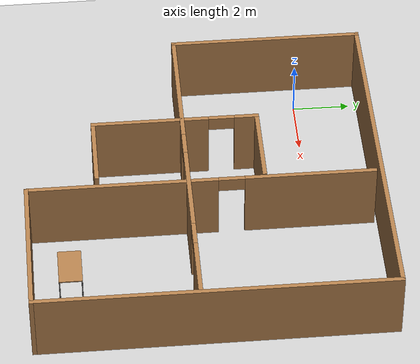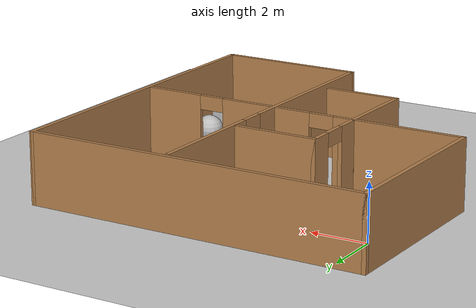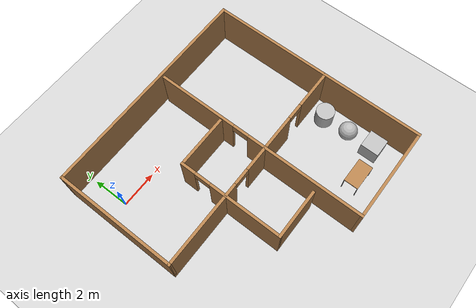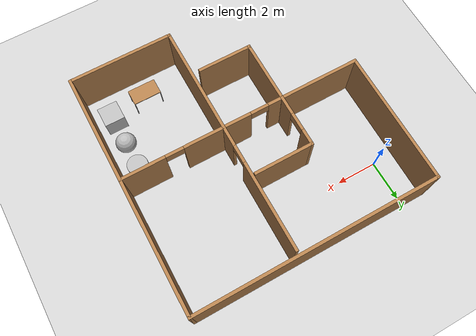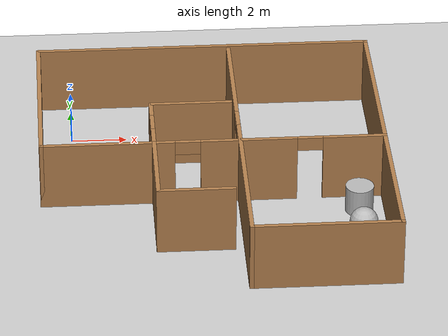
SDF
<sdf version="1.6">
 <world name="default">
  <model name="ground_plane">
   <static>1</static>
   <link name="link">
    <collision name="collision">
     <geometry><plane><normal>0 0 1</normal><size>100 100</size></plane></geometry>
     <surface><friction><ode><mu>100</mu><mu2>50</mu2></ode></friction></surface>
    </collision>
    <visual name="visual">
     <cast_shadows>0</cast_shadows>
     <geometry><plane><normal>0 0 1</normal><size>100 100</size></plane></geometry>
     <material>
      <script><uri>file://media/materials/scripts/gazebo.material</uri><name>Gazebo/Grey</name></script>
     </material>
    </visual>
   </link>
  </model>
  <model name="building1">
   <pose>4.9269 -3.70445 0 0 -0 0</pose>
   <link name="Wall_0">
    <collision name="Wall_0_Collision">
     <geometry><box><size>12.25 0.15 2.5</size></box></geometry>
     <pose>0 0 1.25 0 -0 0</pose>
    </collision>
    <visual name="Wall_0_Visual">
     <pose>0 0 1.25 0 -0 0</pose>
     <geometry><box><size>12.25 0.15 2.5</size></box></geometry>
     <material>
      <script><uri>file://media/materials/scripts/gazebo.material</uri><name>Gazebo/Wood</name></script>
      <ambient>1 1 1 1</ambient>
     </material>
    </visual>
    <pose>0 6.05 0 0 -0 0</pose>
   </link>
   <link name="Wall_1">
    <collision name="Wall_1_Collision">
     <geometry><box><size>12.25 0.15 2.5</size></box></geometry>
     <pose>0 0 1.25 0 -0 0</pose>
    </collision>
    <visual name="Wall_1_Visual">
     <pose>0 0 1.25 0 -0 0</pose>
     <geometry><box><size>12.25 0.15 2.5</size></box></geometry>
     <material>
      <script><uri>file://media/materials/scripts/gazebo.material</uri><name>Gazebo/Wood</name></script>
      <ambient>1 1 1 1</ambient>
     </material>
    </visual>
    <pose>6.05 0 0 0 0 -1.5708</pose>
   </link>
   <link name="Wall_11">
    <collision name="Wall_11_Collision">
     <geometry><box><size>3.25 0.15 2.5</size></box></geometry>
     <pose>0 0 1.25 0 -0 0</pose>
    </collision>
    <visual name="Wall_11_Visual">
     <pose>0 0 1.25 0 -0 0</pose>
     <geometry><box><size>3.25 0.15 2.5</size></box></geometry>
     <material>
      <script><uri>file://media/materials/scripts/gazebo.material</uri><name>Gazebo/Wood</name></script>
      <ambient>1 1 1 1</ambient>
     </material>
    </visual>
    <pose>-2.08535 -2.09426 0 0 0 -1.5708</pose>
   </link>
   <link name="Wall_12">
    <collision name="Wall_12_Collision">
     <geometry><box><size>2.75 0.15 2.5</size></box></geometry>
     <pose>0 0 1.25 0 -0 0</pose>
    </collision>
    <visual name="Wall_12_Visual">
     <pose>0 0 1.25 0 -0 0</pose>
     <geometry><box><size>2.75 0.15 2.5</size></box></geometry>
     <material>
      <script><uri>file://media/materials/scripts/gazebo.material</uri><name>Gazebo/Wood</name></script>
      <ambient>1 1 1 1</ambient>
     </material>
    </visual>
    <pose>-0.785354 -3.64426 0 0 -0 0</pose>
   </link>
   <link name="Wall_2">
    <collision name="Wall_2_Collision">
     <geometry><box><size>5.25 0.15 2.5</size></box></geometry>
     <pose>0 0 1.25 0 -0 0</pose>
    </collision>
    <visual name="Wall_2_Visual">
     <pose>0 0 1.25 0 -0 0</pose>
     <geometry><box><size>5.25 0.15 2.5</size></box></geometry>
     <material>
      <script><uri>file://media/materials/scripts/gazebo.material</uri><name>Gazebo/Wood</name></script>
      <ambient>1 1 1 1</ambient>
     </material>
    </visual>
    <pose>3.5 -6.05 0 0 -0 3.14159</pose>
   </link>
   <link name="Wall_3">
    <pose>0.95 -0.125 0 0 -0 1.5708</pose>
    <visual name="Wall_3_Visual_0">
     <pose>-2.70599 0 1.25 0 -0 0</pose>
     <geometry><box><size>6.58803 0.15 2.5</size></box></geometry>
     <material>
      <script><uri>file://media/materials/scripts/gazebo.material</uri><name>Gazebo/Wood</name></script>
      <ambient>1 1 1 1</ambient>
     </material>
    </visual>
    <collision name="Wall_3_Collision_0">
     <geometry><box><size>6.58803 0.15 2.5</size></box></geometry>
     <pose>-2.70599 0 1.25 0 -0 0</pose>
    </collision>
    <visual name="Wall_3_Visual_1">
     <pose>3.74402 0 1.25 0 -0 0</pose>
     <geometry><box><size>4.51197 0.15 2.5</size></box></geometry>
     <material>
      <script><uri>file://media/materials/scripts/gazebo.material</uri><name>Gazebo/Wood</name></script>
      <ambient>1 1 1 1</ambient>
     </material>
    </visual>
    <collision name="Wall_3_Collision_1">
     <geometry><box><size>4.51197 0.15 2.5</size></box></geometry>
     <pose>3.74402 0 1.25 0 -0 0</pose>
    </collision>
    <visual name="Wall_3_Visual_2">
     <pose>1.03803 0 2.25 0 -0 0</pose>
     <geometry><box><size>0.9 0.15 0.5</size></box></geometry>
     <material>
      <script><uri>file://media/materials/scripts/gazebo.material</uri><name>Gazebo/Wood</name></script>
      <ambient>1 1 1 1</ambient>
     </material>
    </visual>
    <collision name="Wall_3_Collision_2">
     <geometry><box><size>0.9 0.15 0.5</size></box></geometry>
     <pose>1.03803 0 2.25 0 -0 0</pose>
    </collision>
   </link>
   <link name="Wall_5">
    <collision name="Wall_5_Collision">
     <geometry><box><size>6.75 0.15 2.5</size></box></geometry>
     <pose>0 0 1.25 0 -0 0</pose>
    </collision>
    <visual name="Wall_5_Visual">
     <pose>0 0 1.25 0 -0 0</pose>
     <geometry><box><size>6.75 0.15 2.5</size></box></geometry>
     <material>
      <script><uri>file://media/materials/scripts/gazebo.material</uri><name>Gazebo/Wood</name></script>
      <ambient>1 1 1 1</ambient>
     </material>
    </visual>
    <pose>-6.05 2.75 0 0 0 -1.5708</pose>
   </link>
   <link name="Wall_6">
    <pose>0 -0.55 0 0 -0 0</pose>
    <visual name="Wall_6_Visual_0">
     <pose>-3.73718 0 1.25 0 -0 0</pose>
     <geometry><box><size>4.77564 0.15 2.5</size></box></geometry>
     <material>
      <script><uri>file://media/materials/scripts/gazebo.material</uri><name>Gazebo/Wood</name></script>
      <ambient>1 1 1 1</ambient>
     </material>
    </visual>
    <collision name="Wall_6_Collision_0">
     <geometry><box><size>4.77564 0.15 2.5</size></box></geometry>
     <pose>-3.73718 0 1.25 0 -0 0</pose>
    </collision>
    <visual name="Wall_6_Visual_1">
     <pose>1.25725 0 1.25 0 -0 0</pose>
     <geometry><box><size>3.41322 0.15 2.5</size></box></geometry>
     <material>
      <script><uri>file://media/materials/scripts/gazebo.material</uri><name>Gazebo/Wood</name></script>
      <ambient>1 1 1 1</ambient>
     </material>
    </visual>
    <collision name="Wall_6_Collision_1">
     <geometry><box><size>3.41322 0.15 2.5</size></box></geometry>
     <pose>1.25725 0 1.25 0 -0 0</pose>
    </collision>
    <visual name="Wall_6_Visual_2">
     <pose>4.99443 0 1.25 0 -0 0</pose>
     <geometry><box><size>2.26114 0.15 2.5</size></box></geometry>
     <material>
      <script><uri>file://media/materials/scripts/gazebo.material</uri><name>Gazebo/Wood</name></script>
      <ambient>1 1 1 1</ambient>
     </material>
    </visual>
    <collision name="Wall_6_Collision_2">
     <geometry><box><size>2.26114 0.15 2.5</size></box></geometry>
     <pose>4.99443 0 1.25 0 -0 0</pose>
    </collision>
    <visual name="Wall_6_Visual_3">
     <pose>-0.899364 0 2.25 0 -0 0</pose>
     <geometry><box><size>0.9 0.15 0.5</size></box></geometry>
     <material>
      <script><uri>file://media/materials/scripts/gazebo.material</uri><name>Gazebo/Wood</name></script>
      <ambient>1 1 1 1</ambient>
     </material>
    </visual>
    <collision name="Wall_6_Collision_3">
     <geometry><box><size>0.9 0.15 0.5</size></box></geometry>
     <pose>-0.899364 0 2.25 0 -0 0</pose>
    </collision>
    <visual name="Wall_6_Visual_4">
     <pose>3.41386 0 2.25 0 -0 0</pose>
     <geometry><box><size>0.9 0.15 0.5</size></box></geometry>
     <material>
      <script><uri>file://media/materials/scripts/gazebo.material</uri><name>Gazebo/Wood</name></script>
      <ambient>1 1 1 1</ambient>
     </material>
    </visual>
    <collision name="Wall_6_Collision_4">
     <geometry><box><size>0.9 0.15 0.5</size></box></geometry>
     <pose>3.41386 0 2.25 0 -0 0</pose>
    </collision>
   </link>
   <link name="Wall_8">
    <pose>-2.08535 0.755741 0 0 -0 1.5708</pose>
    <visual name="Wall_8_Visual_0">
     <pose>-0.87974 0 1.25 0 -0 0</pose>
     <geometry><box><size>0.990519 0.15 2.5</size></box></geometry>
     <material>
      <script><uri>file://media/materials/scripts/gazebo.material</uri><name>Gazebo/Wood</name></script>
      <ambient>1 1 1 1</ambient>
     </material>
    </visual>
    <collision name="Wall_8_Collision_0">
     <geometry><box><size>0.990519 0.15 2.5</size></box></geometry>
     <pose>-0.87974 0 1.25 0 -0 0</pose>
    </collision>
    <visual name="Wall_8_Visual_1">
     <pose>0.94526 0 1.25 0 -0 0</pose>
     <geometry><box><size>0.859481 0.15 2.5</size></box></geometry>
     <material>
      <script><uri>file://media/materials/scripts/gazebo.material</uri><name>Gazebo/Wood</name></script>
      <ambient>1 1 1 1</ambient>
     </material>
    </visual>
    <collision name="Wall_8_Collision_1">
     <geometry><box><size>0.859481 0.15 2.5</size></box></geometry>
     <pose>0.94526 0 1.25 0 -0 0</pose>
    </collision>
    <visual name="Wall_8_Visual_2">
     <pose>0.065519 0 2.25 0 -0 0</pose>
     <geometry><box><size>0.9 0.15 0.5</size></box></geometry>
     <material>
      <script><uri>file://media/materials/scripts/gazebo.material</uri><name>Gazebo/Wood</name></script>
      <ambient>1 1 1 1</ambient>
     </material>
    </visual>
    <collision name="Wall_8_Collision_2">
     <geometry><box><size>0.9 0.15 0.5</size></box></geometry>
     <pose>0.065519 0 2.25 0 -0 0</pose>
    </collision>
   </link>
   <link name="Wall_9">
    <collision name="Wall_9_Collision">
     <geometry><box><size>3 0.15 2.5</size></box></geometry>
     <pose>0 0 1.25 0 -0 0</pose>
    </collision>
    <visual name="Wall_9_Visual">
     <pose>0 0 1.25 0 -0 0</pose>
     <geometry><box><size>3 0.15 2.5</size></box></geometry>
     <material>
      <script><uri>file://media/materials/scripts/gazebo.material</uri><name>Gazebo/Wood</name></script>
      <ambient>1 1 1 1</ambient>
     </material>
    </visual>
    <pose>-0.660354 2.05574 0 0 -0 0</pose>
   </link>
   <static>1</static>
  </model>
  <model name="table_3">
   <static>0</static>
   <link name="link">
    <collision name="surface">
     <pose>0 0 1 0 -0 0</pose>
     <geometry><box><size>1.5 0.8 0.03</size></box></geometry>
     <surface><friction><ode><mu>0.6</mu><mu2>0.6</mu2></ode></friction></surface>
    </collision>
    <visual name="visual1">
     <pose>0 0 1 0 -0 0</pose>
     <geometry><box><size>1.4 0.8 0.04</size></box></geometry>
     <material>
      <script><uri>file://media/materials/scripts/gazebo.material</uri><name>Gazebo/Wood</name></script>
     </material>
    </visual>
    <collision name="front_left_leg">
     <pose>0.68 0.38 0.5 0 -0 0</pose>
     <geometry><cylinder><radius>0.02</radius><length>1</length></cylinder></geometry>
    </collision>
    <visual name="front_left_leg">
     <pose>0.68 0.38 0.5 0 -0 0</pose>
     <geometry><cylinder><radius>0.02</radius><length>1</length></cylinder></geometry>
     <material>
      <script><uri>file://media/materials/scripts/gazebo.material</uri><name>Gazebo/Grey</name></script>
     </material>
    </visual>
    <collision name="front_right_leg">
     <pose>0.68 -0.38 0.5 0 -0 0</pose>
     <geometry><cylinder><radius>0.02</radius><length>1</length></cylinder></geometry>
    </collision>
    <visual name="front_right_leg">
     <pose>0.68 -0.38 0.5 0 -0 0</pose>
     <geometry><cylinder><radius>0.02</radius><length>1</length></cylinder></geometry>
     <material>
      <script><uri>file://media/materials/scripts/gazebo.material</uri><name>Gazebo/Grey</name></script>
     </material>
    </visual>
    <collision name="back_right_leg">
     <pose>-0.68 -0.38 0.5 0 -0 0</pose>
     <geometry><cylinder><radius>0.02</radius><length>1</length></cylinder></geometry>
    </collision>
    <visual name="back_right_leg">
     <pose>-0.68 -0.38 0.5 0 -0 0</pose>
     <geometry><cylinder><radius>0.02</radius><length>1</length></cylinder></geometry>
     <material>
      <script><uri>file://media/materials/scripts/gazebo.material</uri><name>Gazebo/Grey</name></script>
     </material>
    </visual>
    <collision name="back_left_leg">
     <pose>-0.68 0.38 0.5 0 -0 0</pose>
     <geometry><cylinder><radius>0.02</radius><length>1</length></cylinder></geometry>
    </collision>
    <visual name="back_left_leg">
     <pose>-0.68 0.38 0.5 0 -0 0</pose>
     <geometry><cylinder><radius>0.02</radius><length>1</length></cylinder></geometry>
     <material>
      <script><uri>file://media/materials/scripts/gazebo.material</uri><name>Gazebo/Grey</name></script>
     </material>
    </visual>
    <inertial>
     <inertia><ixx>1</ixx><ixy>0</ixy><ixz>0</ixz><iyy>1</iyy><iyz>0</iyz><izz>1</izz></inertia>
     <mass>1</mass>
    </inertial>
   </link>
   <pose>8.11296 -8.43262 -9e-06 1e-06 -1e-06 0</pose>
  </model>
  <model name="textured_shapes">
   <pose>10.0291 -6.66902 0.5 0 -0 0</pose>
   <link name="box">
    <pose>0 -1.5 0 0 -0 0</pose>
    <collision name="collision"><geometry><box><size>1 1 1</size></box></geometry></collision>
    <visual name="visual">
     <geometry><box><size>1 1 1</size></box></geometry>
     <material>
      <script>
       <uri>model://textured_shapes/materials/scripts</uri>
       <uri>model://textured_shapes/materials/textures</uri>
       <name>TexturedShape/Squares</name>
      </script>
     </material>
    </visual>
    <inertial>
     <inertia><ixx>1</ixx><ixy>0</ixy><ixz>0</ixz><iyy>1</iyy><iyz>0</iyz><izz>1</izz></inertia>
     <mass>1</mass>
    </inertial>
   </link>
   <link name="sphere">
    <collision name="collision"><geometry><sphere><radius>0.5</radius></sphere></geometry></collision>
    <visual name="visual">
     <geometry><sphere><radius>0.5</radius></sphere></geometry>
     <material>
      <script>
       <uri>model://textured_shapes/materials/scripts</uri>
       <uri>model://textured_shapes/materials/textures</uri>
       <name>TexturedShape/Squares</name>
      </script>
     </material>
    </visual>
    <inertial>
     <inertia><ixx>1</ixx><ixy>0</ixy><ixz>0</ixz><iyy>1</iyy><iyz>0</iyz><izz>1</izz></inertia>
     <mass>1</mass>
    </inertial>
   </link>
   <link name="cylinder">
    <pose>0 1.5 0 0 -0 0</pose>
    <collision name="collision">
     <geometry><cylinder><radius>0.5</radius><length>1</length></cylinder></geometry>
    </collision>
    <visual name="visual">
     <geometry><cylinder><radius>0.5</radius><length>1</length></cylinder></geometry>
     <material>
      <script>
       <uri>model://textured_shapes/materials/scripts</uri>
       <uri>model://textured_shapes/materials/textures</uri>
       <name>TexturedShape/Squares</name>
      </script>
     </material>
    </visual>
    <inertial>
     <inertia><ixx>1</ixx><ixy>0</ixy><ixz>0</ixz><iyy>1</iyy><iyz>0</iyz><izz>1</izz></inertia>
     <mass>1</mass>
    </inertial>
   </link>
  </model>
 </world>
</sdf>
